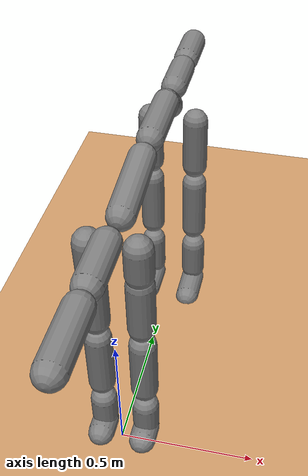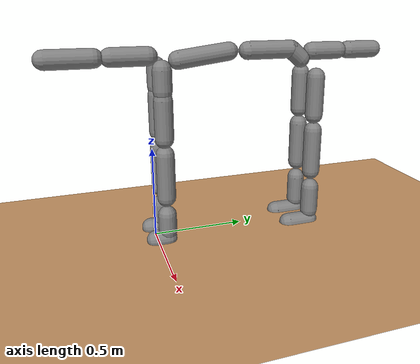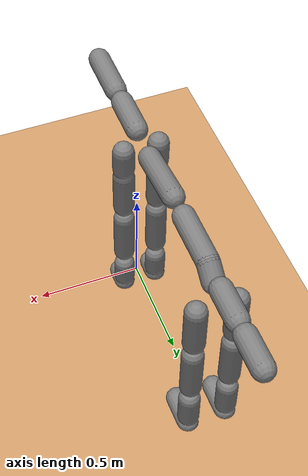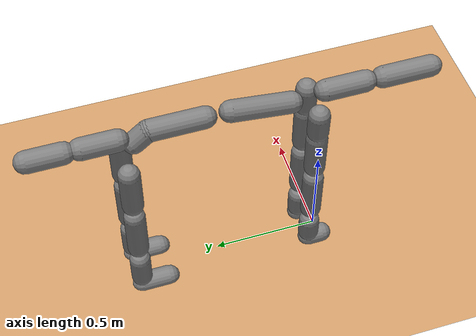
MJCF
<mujoco model="armature">
  <option integrator="RK4" timestep="0.01" />
  <default>
    <joint armature="0.01" damping="1" limited="true" />
    <geom friction="1 0.1 0.1" density="5" />
  </default>
  <asset>
    <texture builtin="flat" name="texplane" width="1" height="1" rgb1="0.8 0.6 0.4" />
    <material name="matplane" texture="texplane" />
  </asset>
  <worldbody>
    <geom name="floor" type="plane" size="10 10 0.1" material="matplane" />
    <light name="top" pos="0 0 2" mode="trackcom"/>

    <body name="Hips" pos="0.001 0.792 1.000">
      <geom type="capsule" fromto="0 0 0 -0.000 0.063 -0.054" size="0.05" />
      <freejoint />

      <body name="Spine" pos="0.000 0.000 0.000">
        <geom type="capsule" fromto="0 0 0 0.000 -0.253 -0.000" size="0.05" />
        <joint name="Spine_x" type="hinge" axis="1 0 0" pos="0 0 0" range="-90 90"/>
        <joint name="Spine_y" type="hinge" axis="0 1 0" pos="0 0 0" range="-90 90"/>
        <joint name="Spine_z" type="hinge" axis="0 0 1" pos="0 0 0" range="-90 90"/>

        <body name="Spine1" pos="0.000 -0.362 -0.000">
          <geom type="capsule" fromto="0 0 0 0.000 -0.276 -0.036" size="0.05" />
          <joint name="Spine1_x" type="hinge" axis="1 0 0" pos="0 0 0" range="-90 90"/>
          <joint name="Spine1_y" type="hinge" axis="0 1 0" pos="0 0 0" range="-90 90"/>
          <joint name="Spine1_z" type="hinge" axis="0 0 1" pos="0 0 0" range="-90 90"/>

          <body name="Neck" pos="0.000 -0.429 -0.011">
            <geom type="capsule" fromto="0 0 0 0.000 -0.187 -0.000" size="0.05" />
            <joint name="Neck_x" type="hinge" axis="1 0 0" pos="0 0 0" range="-90 90"/>
            <joint name="Neck_y" type="hinge" axis="0 1 0" pos="0 0 0" range="-90 90"/>
            <joint name="Neck_z" type="hinge" axis="0 0 1" pos="0 0 0" range="-90 90"/>

            <body name="Head" pos="0.000 -0.267 -0.001">
              <geom type="capsule" fromto="0 0 0 0.000 -0.227 -0.000" size="0.05" />
              <joint name="Head_x" type="hinge" axis="1 0 0" pos="0 0 0" range="-90 90"/>
              <joint name="Head_y" type="hinge" axis="0 1 0" pos="0 0 0" range="-90 90"/>
              <joint name="Head_z" type="hinge" axis="0 0 1" pos="0 0 0" range="-90 90"/>
            </body>
          </body>

          <body name="LeftShoulder" pos="0.082 -0.377 -0.071">
            <geom type="capsule" fromto="0 0 0 -0.000 0.000 -0.107" size="0.05" />
            <joint name="LeftShoulder_x" type="hinge" axis="1 0 0" pos="0 0 0" range="-90 90"/>
            <joint name="LeftShoulder_y" type="hinge" axis="0 1 0" pos="0 0 0" range="-90 90"/>
            <joint name="LeftShoulder_z" type="hinge" axis="0 0 1" pos="0 0 0" range="-90 90"/>

            <body name="LeftArm" pos="-0.000 0.000 -0.152">
              <geom type="capsule" fromto="0 0 0 -0.000 0.000 -0.203" size="0.05" />
              <joint name="LeftArm_x" type="hinge" axis="1 0 0" pos="0 0 0" range="-90 90"/>
              <joint name="LeftArm_y" type="hinge" axis="0 1 0" pos="0 0 0" range="-90 90"/>
              <joint name="LeftArm_z" type="hinge" axis="0 0 1" pos="0 0 0" range="-90 90"/>

              <body name="LeftForeArm" pos="-0.000 0.000 -0.290">
                <geom type="capsule" fromto="0 0 0 -0.000 0.000 -0.237" size="0.05" />
                <joint name="LeftForeArm_x" type="hinge" axis="1 0 0" pos="0 0 0" range="-90 90"/>
                <joint name="LeftForeArm_y" type="hinge" axis="0 1 0" pos="0 0 0" range="-90 90"/>
                <joint name="LeftForeArm_z" type="hinge" axis="0 0 1" pos="0 0 0" range="-90 90"/>

                <body name="LeftHand" pos="-0.000 0.000 -0.339">
                  <geom type="capsule" fromto="0 0 0 -0.000 0.000 -0.096" size="0.05" />
                  <joint name="LeftHand_x" type="hinge" axis="1 0 0" pos="0 0 0" range="-90 90"/>
                  <joint name="LeftHand_y" type="hinge" axis="0 1 0" pos="0 0 0" range="-90 90"/>
                  <joint name="LeftHand_z" type="hinge" axis="0 0 1" pos="0 0 0" range="-90 90"/>

                  <body name="LeftFinger" pos="-0.000 0.000 -0.137">
                    <geom type="capsule" fromto="0 0 0 -0.000 -0.067 -0.000" size="0.05" />
                    <joint name="LeftFinger_x" type="hinge" axis="1 0 0" pos="0 0 0" range="-90 90"/>
                    <joint name="LeftFinger_y" type="hinge" axis="0 1 0" pos="0 0 0" range="-90 90"/>
                    <joint name="LeftFinger_z" type="hinge" axis="0 0 1" pos="0 0 0" range="-90 90"/>
                  </body>
                </body>
              </body>
            </body>
          </body>

          <body name="RightShoulder" pos="-0.082 -0.377 -0.071">
            <geom type="capsule" fromto="0 0 0 0.002 0.000 -0.107" size="0.05" />
            <joint name="RightShoulder_x" type="hinge" axis="1 0 0" pos="0 0 0" range="-90 90"/>
            <joint name="RightShoulder_y" type="hinge" axis="0 1 0" pos="0 0 0" range="-90 90"/>
            <joint name="RightShoulder_z" type="hinge" axis="0 0 1" pos="0 0 0" range="-90 90"/>

            <body name="RightArm" pos="0.003 0.000 -0.152">
              <geom type="capsule" fromto="0 0 0 -0.000 0.000 -0.203" size="0.05" />
              <joint name="RightArm_x" type="hinge" axis="1 0 0" pos="0 0 0" range="-90 90"/>
              <joint name="RightArm_y" type="hinge" axis="0 1 0" pos="0 0 0" range="-90 90"/>
              <joint name="RightArm_z" type="hinge" axis="0 0 1" pos="0 0 0" range="-90 90"/>

              <body name="RightForeArm" pos="-0.000 0.000 -0.290">
                <geom type="capsule" fromto="0 0 0 -0.000 0.000 -0.237" size="0.05" />
                <joint name="RightForeArm_x" type="hinge" axis="1 0 0" pos="0 0 0" range="-90 90"/>
                <joint name="RightForeArm_y" type="hinge" axis="0 1 0" pos="0 0 0" range="-90 90"/>
                <joint name="RightForeArm_z" type="hinge" axis="0 0 1" pos="0 0 0" range="-90 90"/>

                <body name="RightHand" pos="-0.000 0.000 -0.339">
                  <geom type="capsule" fromto="0 0 0 -0.000 0.000 -0.096" size="0.05" />
                  <joint name="RightHand_x" type="hinge" axis="1 0 0" pos="0 0 0" range="-90 90"/>
                  <joint name="RightHand_y" type="hinge" axis="0 1 0" pos="0 0 0" range="-90 90"/>
                  <joint name="RightHand_z" type="hinge" axis="0 0 1" pos="0 0 0" range="-90 90"/>

                  <body name="RightFinger" pos="-0.000 0.000 -0.137">
                    <geom type="capsule" fromto="0 0 0 0.000 -0.067 -0.000" size="0.05" />
                    <joint name="RightFinger_x" type="hinge" axis="1 0 0" pos="0 0 0" range="-90 90"/>
                    <joint name="RightFinger_y" type="hinge" axis="0 1 0" pos="0 0 0" range="-90 90"/>
                    <joint name="RightFinger_z" type="hinge" axis="0 0 1" pos="0 0 0" range="-90 90"/>
                  </body>
                </body>
              </body>
            </body>
          </body>
        </body>
      </body>

      <body name="LeftUpLeg" pos="0.091 0.114 -0.146">
        <geom type="capsule" fromto="0 0 0 -0.000 0.000 -0.213" size="0.05" />
        <joint name="LeftUpLeg_x" type="hinge" axis="1 0 0" pos="0 0 0" range="-90 90"/>
        <joint name="LeftUpLeg_y" type="hinge" axis="0 1 0" pos="0 0 0" range="-90 90"/>
        <joint name="LeftUpLeg_z" type="hinge" axis="0 0 1" pos="0 0 0" range="-90 90"/>

        <body name="LeftLeg" pos="-0.000 0.000 -0.305">
          <geom type="capsule" fromto="0 0 0 -0.000 0.000 -0.240" size="0.05" />
          <joint name="LeftLeg_x" type="hinge" axis="1 0 0" pos="0 0 0" range="-90 90"/>
          <joint name="LeftLeg_y" type="hinge" axis="0 1 0" pos="0 0 0" range="-90 90"/>
          <joint name="LeftLeg_z" type="hinge" axis="0 0 1" pos="0 0 0" range="-90 90"/>

          <body name="LeftFoot" pos="-0.000 0.000 -0.343">
            <geom type="capsule" fromto="0 0 0 -0.000 0.000 -0.144" size="0.05" />
            <joint name="LeftFoot_x" type="hinge" axis="1 0 0" pos="0 0 0" range="-90 90"/>
            <joint name="LeftFoot_y" type="hinge" axis="0 1 0" pos="0 0 0" range="-90 90"/>
            <joint name="LeftFoot_z" type="hinge" axis="0 0 1" pos="0 0 0" range="-90 90"/>

            <body name="LeftToe" pos="-0.000 0.000 -0.206">
              <geom type="capsule" fromto="0 0 0 0.000 -0.133 -0.000" size="0.05" />
              <joint name="LeftToe_x" type="hinge" axis="1 0 0" pos="0 0 0" range="-90 90"/>
              <joint name="LeftToe_y" type="hinge" axis="0 1 0" pos="0 0 0" range="-90 90"/>
              <joint name="LeftToe_z" type="hinge" axis="0 0 1" pos="0 0 0" range="-90 90"/>
            </body>
          </body>
        </body>
      </body>

      <body name="RightUpLeg" pos="-0.091 0.114 -0.146">
        <geom type="capsule" fromto="0 0 0 -0.000 0.000 -0.213" size="0.05" />
        <joint name="RightUpLeg_x" type="hinge" axis="1 0 0" pos="0 0 0" range="-90 90"/>
        <joint name="RightUpLeg_y" type="hinge" axis="0 1 0" pos="0 0 0" range="-90 90"/>
        <joint name="RightUpLeg_z" type="hinge" axis="0 0 1" pos="0 0 0" range="-90 90"/>

        <body name="RightLeg" pos="-0.000 0.000 -0.305">
          <geom type="capsule" fromto="0 0 0 -0.000 0.000 -0.240" size="0.05" />
          <joint name="RightLeg_x" type="hinge" axis="1 0 0" pos="0 0 0" range="-90 90"/>
          <joint name="RightLeg_y" type="hinge" axis="0 1 0" pos="0 0 0" range="-90 90"/>
          <joint name="RightLeg_z" type="hinge" axis="0 0 1" pos="0 0 0" range="-90 90"/>

          <body name="RightFoot" pos="-0.000 0.000 -0.343">
            <geom type="capsule" fromto="0 0 0 -0.000 0.000 -0.144" size="0.05" />
            <joint name="RightFoot_x" type="hinge" axis="1 0 0" pos="0 0 0" range="-90 90"/>
            <joint name="RightFoot_y" type="hinge" axis="0 1 0" pos="0 0 0" range="-90 90"/>
            <joint name="RightFoot_z" type="hinge" axis="0 0 1" pos="0 0 0" range="-90 90"/>

            <body name="RightToe" pos="-0.000 0.000 -0.206">
              <geom type="capsule" fromto="0 0 0 0.000 -0.133 -0.000" size="0.05" />
              <joint name="RightToe_x" type="hinge" axis="1 0 0" pos="0 0 0" range="-90 90"/>
              <joint name="RightToe_y" type="hinge" axis="0 1 0" pos="0 0 0" range="-90 90"/>
              <joint name="RightToe_z" type="hinge" axis="0 0 1" pos="0 0 0" range="-90 90"/>
            </body>
          </body>
        </body>
      </body>

      <body name="Tail" pos="-0.000 0.130 -0.014">
        <geom type="capsule" fromto="0 0 0 -0.000 0.160 0.000" size="0.05" />
        <joint name="Tail_x" type="hinge" axis="1 0 0" pos="0 0 0" range="-90 90"/>
        <joint name="Tail_y" type="hinge" axis="0 1 0" pos="0 0 0" range="-90 90"/>
        <joint name="Tail_z" type="hinge" axis="0 0 1" pos="0 0 0" range="-90 90"/>

        <body name="Tail1" pos="-0.000 0.229 0.000">
          <geom type="capsule" fromto="0 0 0 -0.000 0.160 0.000" size="0.05" />
          <joint name="Tail1_x" type="hinge" axis="1 0 0" pos="0 0 0" range="-90 90"/>
          <joint name="Tail1_y" type="hinge" axis="0 1 0" pos="0 0 0" range="-90 90"/>
          <joint name="Tail1_z" type="hinge" axis="0 0 1" pos="0 0 0" range="-90 90"/>
        </body>
      </body>
    </body>
  </worldbody>

  <actuator>
    <motor name="Spine_x" joint="Spine_x"  />
    <motor name="Spine_y" joint="Spine_y"  />
    <motor name="Spine_z" joint="Spine_z"  />
    <motor name="Spine1_x" joint="Spine1_x"  />
    <motor name="Spine1_y" joint="Spine1_y"  />
    <motor name="Spine1_z" joint="Spine1_z"  />
    <motor name="Neck_x" joint="Neck_x"  />
    <motor name="Neck_y" joint="Neck_y"  />
    <motor name="Neck_z" joint="Neck_z"  />
    <motor name="Head_x" joint="Head_x"  />
    <motor name="Head_y" joint="Head_y"  />
    <motor name="Head_z" joint="Head_z"  />
    <motor name="LeftShoulder_x" joint="LeftShoulder_x"  />
    <motor name="LeftShoulder_y" joint="LeftShoulder_y"  />
    <motor name="LeftShoulder_z" joint="LeftShoulder_z"  />
    <motor name="LeftArm_x" joint="LeftArm_x"  />
    <motor name="LeftArm_y" joint="LeftArm_y"  />
    <motor name="LeftArm_z" joint="LeftArm_z"  />
    <motor name="LeftForeArm_x" joint="LeftForeArm_x"  />
    <motor name="LeftForeArm_y" joint="LeftForeArm_y"  />
    <motor name="LeftForeArm_z" joint="LeftForeArm_z"  />
    <motor name="LeftHand_x" joint="LeftHand_x"  />
    <motor name="LeftHand_y" joint="LeftHand_y"  />
    <motor name="LeftHand_z" joint="LeftHand_z"  />
    <motor name="LeftFinger_x" joint="LeftFinger_x"  />
    <motor name="LeftFinger_y" joint="LeftFinger_y"  />
    <motor name="LeftFinger_z" joint="LeftFinger_z"  />
    <motor name="RightShoulder_x" joint="RightShoulder_x"  />
    <motor name="RightShoulder_y" joint="RightShoulder_y"  />
    <motor name="RightShoulder_z" joint="RightShoulder_z"  />
    <motor name="RightArm_x" joint="RightArm_x"  />
    <motor name="RightArm_y" joint="RightArm_y"  />
    <motor name="RightArm_z" joint="RightArm_z"  />
    <motor name="RightForeArm_x" joint="RightForeArm_x"  />
    <motor name="RightForeArm_y" joint="RightForeArm_y"  />
    <motor name="RightForeArm_z" joint="RightForeArm_z"  />
    <motor name="RightHand_x" joint="RightHand_x"  />
    <motor name="RightHand_y" joint="RightHand_y"  />
    <motor name="RightHand_z" joint="RightHand_z"  />
    <motor name="RightFinger_x" joint="RightFinger_x"  />
    <motor name="RightFinger_y" joint="RightFinger_y"  />
    <motor name="RightFinger_z" joint="RightFinger_z"  />
    <motor name="LeftUpLeg_x" joint="LeftUpLeg_x"  />
    <motor name="LeftUpLeg_y" joint="LeftUpLeg_y"  />
    <motor name="LeftUpLeg_z" joint="LeftUpLeg_z"  />
    <motor name="LeftLeg_x" joint="LeftLeg_x"  />
    <motor name="LeftLeg_y" joint="LeftLeg_y"  />
    <motor name="LeftLeg_z" joint="LeftLeg_z"  />
    <motor name="LeftFoot_x" joint="LeftFoot_x"  />
    <motor name="LeftFoot_y" joint="LeftFoot_y"  />
    <motor name="LeftFoot_z" joint="LeftFoot_z"  />
    <motor name="LeftToe_x" joint="LeftToe_x"  />
    <motor name="LeftToe_y" joint="LeftToe_y"  />
    <motor name="LeftToe_z" joint="LeftToe_z"  />
    <motor name="RightUpLeg_x" joint="RightUpLeg_x"  />
    <motor name="RightUpLeg_y" joint="RightUpLeg_y"  />
    <motor name="RightUpLeg_z" joint="RightUpLeg_z"  />
    <motor name="RightLeg_x" joint="RightLeg_x"  />
    <motor name="RightLeg_y" joint="RightLeg_y"  />
    <motor name="RightLeg_z" joint="RightLeg_z"  />
    <motor name="RightFoot_x" joint="RightFoot_x"  />
    <motor name="RightFoot_y" joint="RightFoot_y"  />
    <motor name="RightFoot_z" joint="RightFoot_z"  />
    <motor name="RightToe_x" joint="RightToe_x"  />
    <motor name="RightToe_y" joint="RightToe_y"  />
    <motor name="RightToe_z" joint="RightToe_z"  />
    <motor name="Tail_x" joint="Tail_x"  />
    <motor name="Tail_y" joint="Tail_y"  />
    <motor name="Tail_z" joint="Tail_z"  />
    <motor name="Tail1_x" joint="Tail1_x"  />
    <motor name="Tail1_y" joint="Tail1_y"  />
    <motor name="Tail1_z" joint="Tail1_z"  />
  </actuator>
</mujoco>
